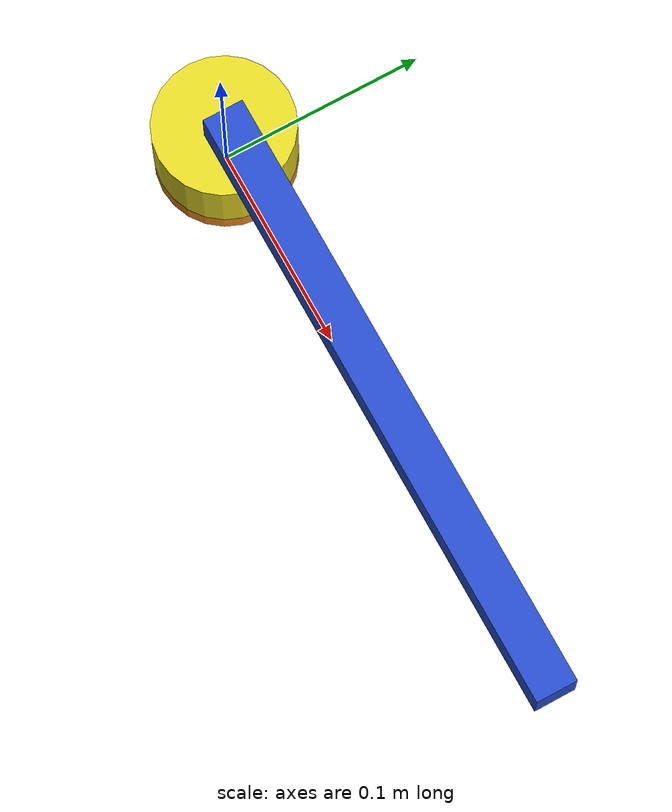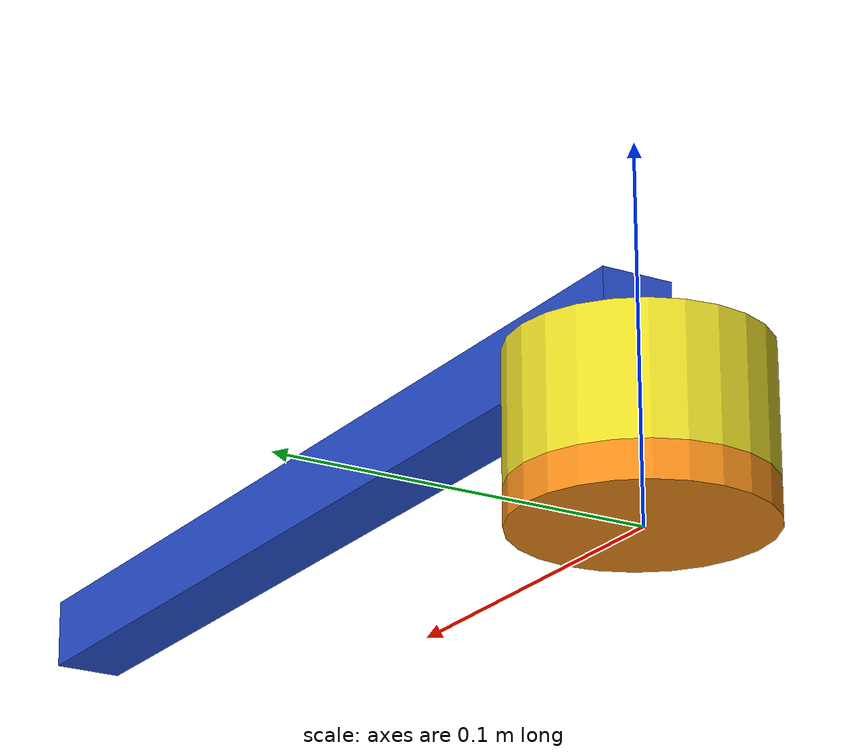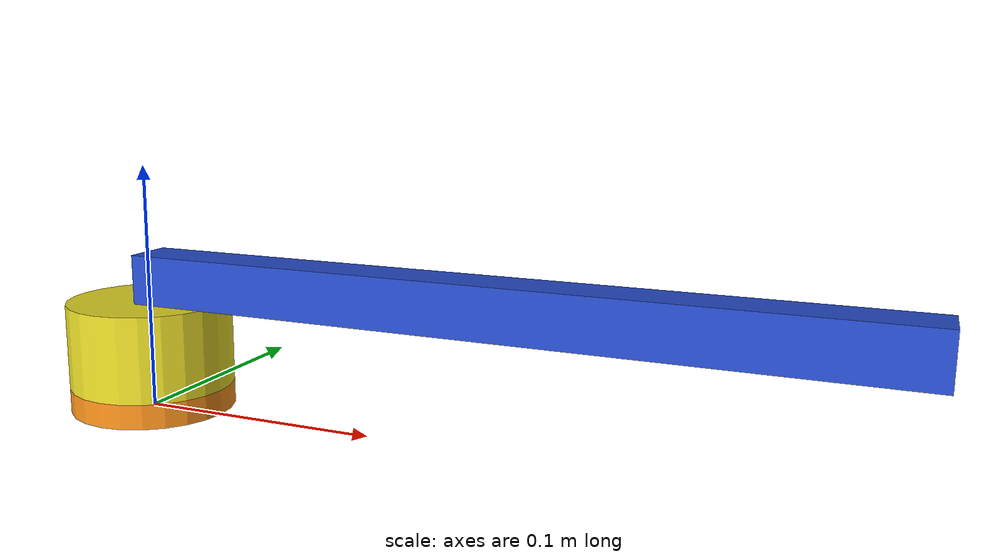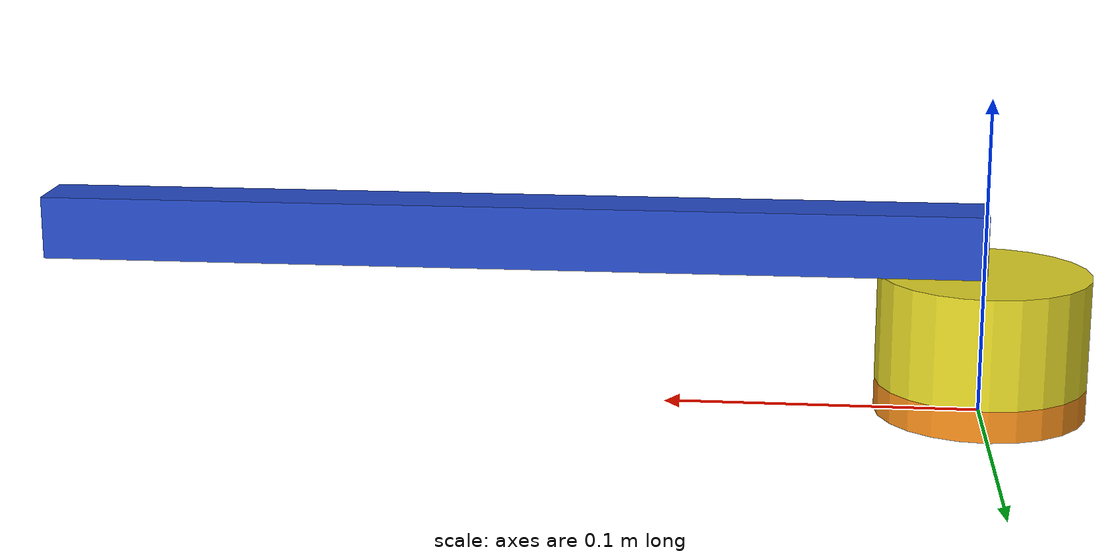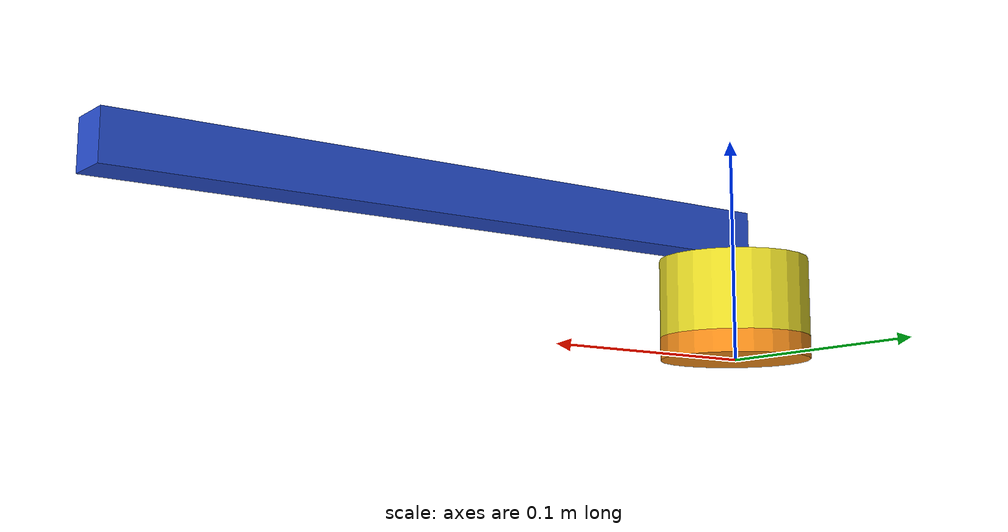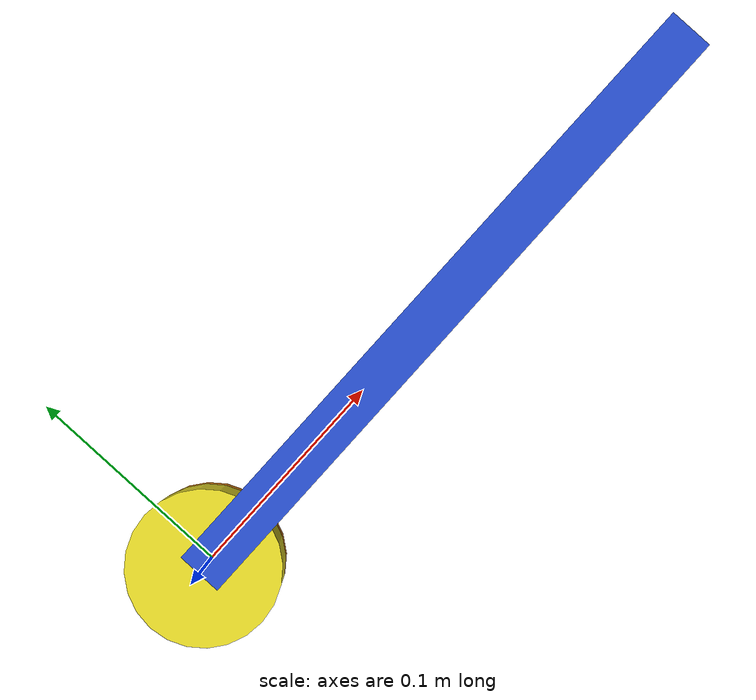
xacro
<?xml version="1.0"?>
<!-- Revolute-Revolute Manipulator -->
<!--
Copied and modified from ROS1 example -
https://github.com/ros-simulation/gazebo_ros_demos/blob/kinetic-devel/gm6020_description/urdf/gm6020.xacro
-->
<robot xmlns:xacro="http://www.ros.org/wiki/xacro" name="gm6020">
  <xacro:arg name="prefix" default="" />

  <!-- Import Gm6020 macro -->
  <xacro:include filename="$(find gm6020_example)/urdf/gm6020_description.urdf.xacro" />

  <!-- Import Rviz colors -->
  <xacro:include filename="$(find gm6020_example)/urdf/gm6020.materials.xacro" />

  <!-- Import Gm6020 ros2_control description -->
  <xacro:include filename="$(find gm6020_example)/urdf/gm6020.ros2_control.xacro" />

  <!-- Used for fixing robot -->
  <link name="world"/>

  <xacro:gm6020 parent="world" prefix="$(arg prefix)">
    <origin xyz="0 0 0" rpy="0 0 0" />
  </xacro:gm6020>

  <xacro:gm6020_ros2_control
    name="Gm6020" prefix="$(arg prefix)" />

</robot>

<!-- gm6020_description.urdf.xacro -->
<robot xmlns:xacro="http://www.ros.org/wiki/xacro">

  <xacro:macro name="gm6020" params="parent prefix *origin">

  <!-- Constants for robot dimensions -->
  <xacro:property name="mass" value="1" /> <!-- arbitrary value for mass -->
  <xacro:property name="diameter" value="0.0667" />
  <xacro:property name="height1" value="0.01" /> <!-- base link -->
  <xacro:property name="height2" value="0.035" /> <!-- link 1 -->

  <joint name="${prefix}base_joint" type="fixed">
    <xacro:insert_block name="origin" />
    <parent link="${parent}"/>
    <child link="${prefix}base_link" />
  </joint>

  <!-- Base Link -->
  <link name="${prefix}base_link">
    <collision>
      <origin xyz="0 0 ${height1/2}" rpy="0 0 0"/>
      <geometry>
        <cylinder radius="${diameter/2}" length="${height1}"/>
      </geometry>
    </collision>

    <visual>
      <origin xyz="0 0 ${height1/2}" rpy="0 0 0"/>
      <geometry>
        <cylinder radius="${diameter/2}" length="${height1}"/>
      </geometry>
      <material name="orange"/>
    </visual>

    <inertial>
      <origin xyz="0 0 ${height1/2}" rpy="0 0 0"/>
      <mass value="${mass}"/>
      <inertia
        ixx="${mass / 12.0 * (diameter*diameter + height1*height1)}" ixy="0.0" ixz="0.0"
        iyy="${mass / 12.0 * (height1*height1 + diameter*diameter)}" iyz="0.0"
        izz="${mass / 12.0 * (diameter*diameter + diameter*diameter)}"/>
    </inertial>
  </link>

  <joint name="${prefix}joint1" type="continuous">
    <parent link="${prefix}base_link"/>
    <child link="${prefix}link1"/>
    <origin xyz="0 0 ${height1}" rpy="0 0 0"/>
    <axis xyz="0 0 1"/>
    <dynamics damping="0.7"/>
    <limit effort="100" velocity="1.0"/>
  </joint>

  <!-- Middle Link -->
  <link name="${prefix}link1">
    <collision>
      <origin xyz="0 0 ${height2/2}" rpy="0 0 0"/>
      <geometry>
        <cylinder radius="${diameter/2}" length="${height2}"/>
      </geometry>
    </collision>

    <visual>
      <origin xyz="0 0 ${height2/2}" rpy="0 0 0"/>
      <geometry>
        <cylinder radius="${diameter/2}" length="${height2}"/>
      </geometry>
      <material name="yellow"/>
    </visual>

    <inertial>
      <origin xyz="0 0 ${height2/2}" rpy="0 0 0"/>
      <mass value="${mass}"/>
      <inertia
        ixx="${mass / 12.0 * (diameter*diameter + height2*height2)}" ixy="0.0" ixz="0.0"
        iyy="${mass / 12.0 * (height2*height2 + diameter*diameter)}" iyz="0.0"
        izz="${mass / 12.0 * (diameter*diameter + diameter*diameter)}"/>
    </inertial>
  </link>

  <joint name="${prefix}marker_joint" type="fixed">
    <origin xyz="${0.3/2} 0 ${height2+0.01}" rpy="0 0 0" />
    <parent link="${prefix}link1"/>
    <child link="${prefix}marker_link" />
  </joint>

  <!-- to visualize motor position -->
  <link name="${prefix}marker_link">
  <visual>
      <origin xyz="0 0 0" rpy="0 0 0"/>
      <geometry>
        <box size="0.3 0.02 0.02"/>
      </geometry>
      <material name="blue"/>
    </visual>
  </link>

  </xacro:macro>

</robot>
